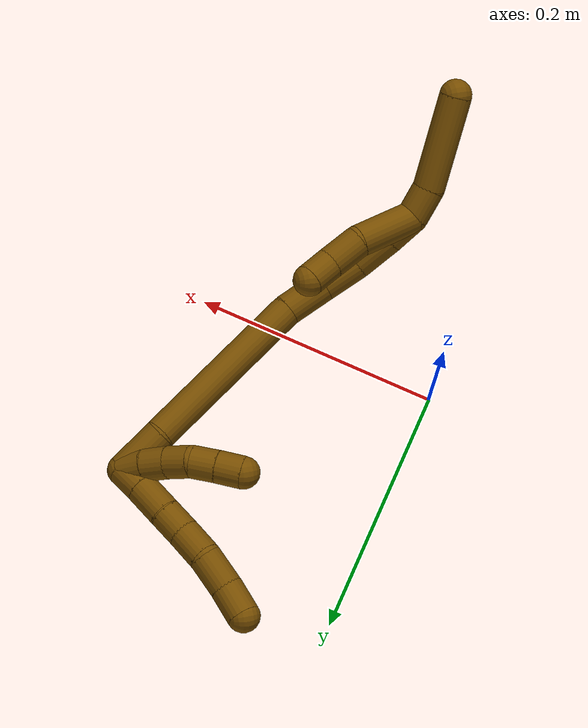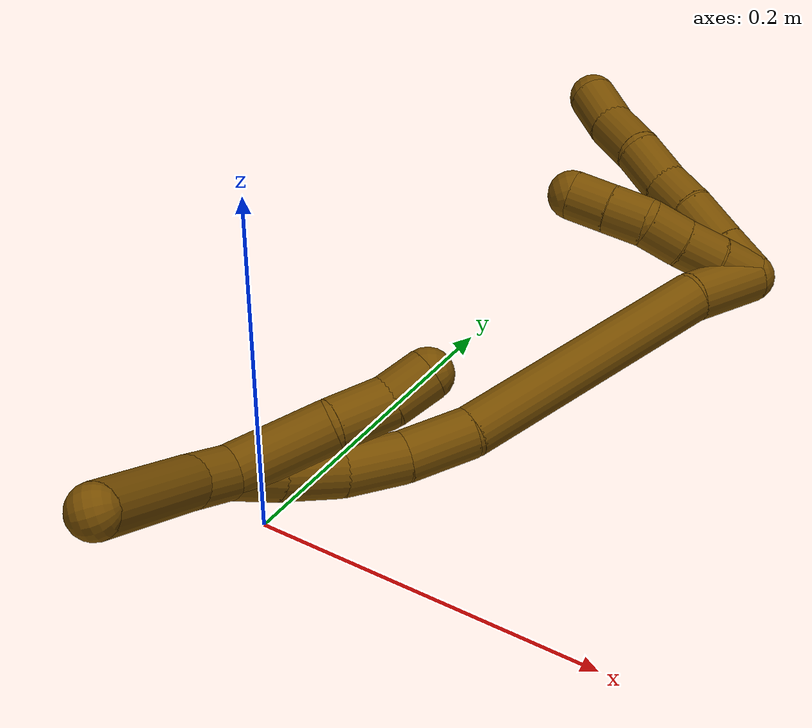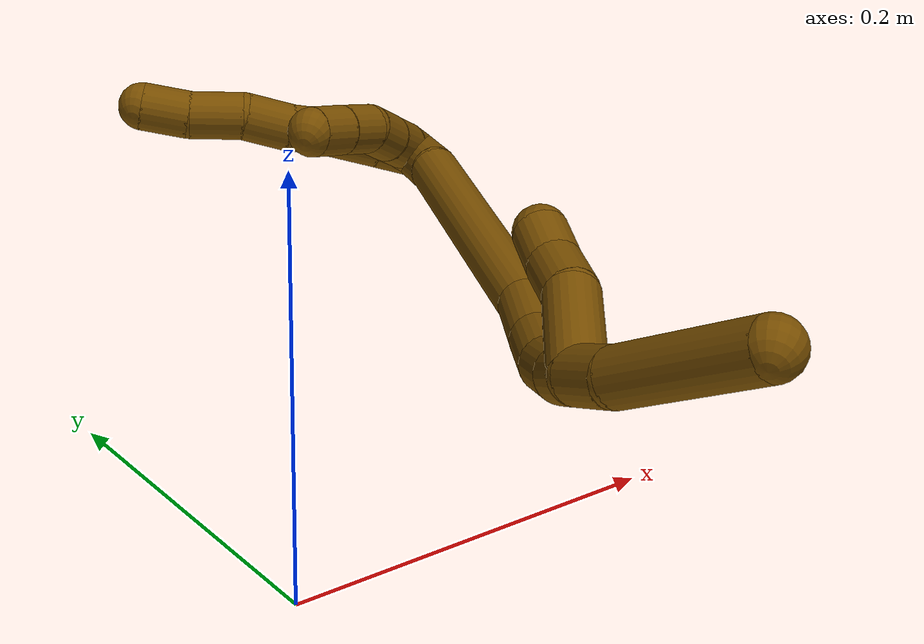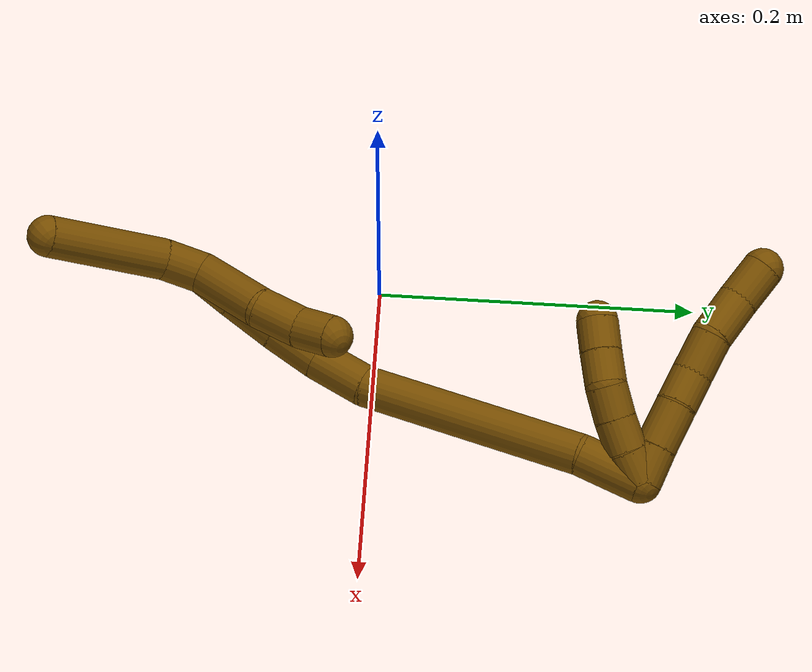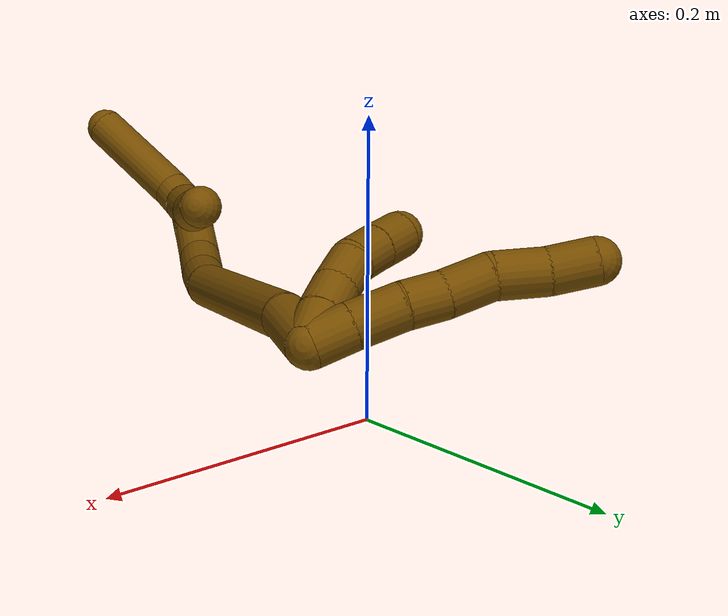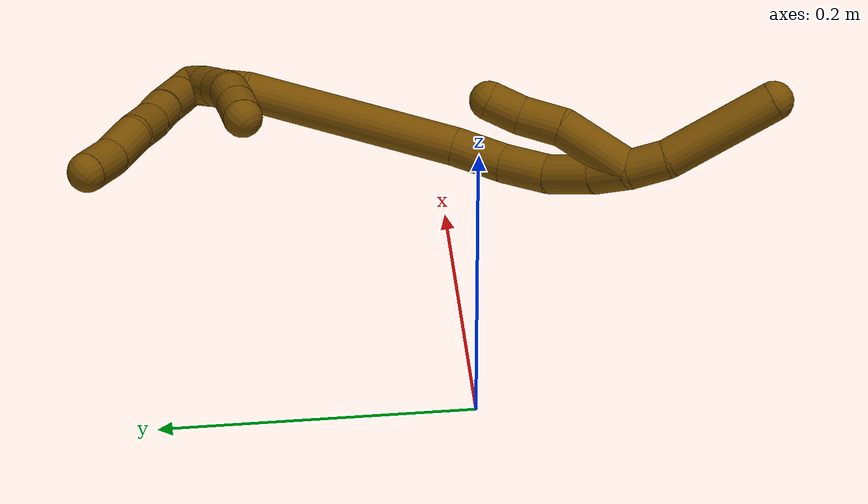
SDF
<sdf version="1.7">
 <world name="default">
  <model name="12">
   <static>0</static>
   <link name="12">
    <collision name="collision-cylinder-e_1_2_8">
     <pose>-0.003692 0.009567 -0.004253 -1.98916 -0.339032 0.515124</pose>
     <geometry><cylinder><radius>0.0125</radius><length>0.022203</length></cylinder></geometry>
     <surface>
      <friction><ode><mu>1.16</mu><mu2>1.16</mu2><slip1>0</slip1><slip2>0</slip2></ode></friction>
      <contact><ode><kp>1e+06</kp><kd>1</kd><max_vel>0</max_vel><min_depth>0.001</min_depth></ode></contact>
     </surface>
    </collision>
    <visual name="visual-cylinder-e_1_2_8">
     <pose>-0.003692 0.009567 -0.004253 -1.98916 -0.339032 0.515124</pose>
     <geometry><cylinder><radius>0.0125</radius><length>0.022203</length></cylinder></geometry>
     <material><ambient>0.466667 0.301961 0 1</ambient></material>
    </visual>
    <collision name="collision-cylinder-e_2_8_9">
     <pose>-0.01154 0.031416 -0.013517 -1.95813 -0.303595 0.447608</pose>
     <geometry><cylinder><radius>0.0125</radius><length>0.027801</length></cylinder></geometry>
     <surface>
      <friction><ode><mu>1.16</mu><mu2>1.16</mu2><slip1>0</slip1><slip2>0</slip2></ode></friction>
      <contact><ode><kp>1e+06</kp><kd>1</kd><max_vel>0</max_vel><min_depth>0.001</min_depth></ode></contact>
     </surface>
    </collision>
    <visual name="visual-cylinder-e_2_8_9">
     <pose>-0.01154 0.031416 -0.013517 -1.95813 -0.303595 0.447608</pose>
     <geometry><cylinder><radius>0.0125</radius><length>0.027801</length></cylinder></geometry>
     <material><ambient>0.466667 0.301961 0 1</ambient></material>
    </visual>
    <collision name="collision-cylinder-e_3_9_10">
     <pose>-0.017805 0.05315 -0.022935 -2.00712 -0.19955 0.311723</pose>
     <geometry><cylinder><radius>0.0125</radius><length>0.021282</length></cylinder></geometry>
     <surface>
      <friction><ode><mu>1.16</mu><mu2>1.16</mu2><slip1>0</slip1><slip2>0</slip2></ode></friction>
      <contact><ode><kp>1e+06</kp><kd>1</kd><max_vel>0</max_vel><min_depth>0.001</min_depth></ode></contact>
     </surface>
    </collision>
    <visual name="visual-cylinder-e_3_9_10">
     <pose>-0.017805 0.05315 -0.022935 -2.00712 -0.19955 0.311723</pose>
     <geometry><cylinder><radius>0.0125</radius><length>0.021282</length></cylinder></geometry>
     <material><ambient>0.466667 0.301961 0 1</ambient></material>
    </visual>
    <collision name="collision-cylinder-e_4_10_11">
     <pose>-0.023733 0.073937 -0.031697 -1.93759 -0.304765 0.439803</pose>
     <geometry><cylinder><radius>0.0125</radius><length>0.025456</length></cylinder></geometry>
     <surface>
      <friction><ode><mu>1.16</mu><mu2>1.16</mu2><slip1>0</slip1><slip2>0</slip2></ode></friction>
      <contact><ode><kp>1e+06</kp><kd>1</kd><max_vel>0</max_vel><min_depth>0.001</min_depth></ode></contact>
     </surface>
    </collision>
    <visual name="visual-cylinder-e_4_10_11">
     <pose>-0.023733 0.073937 -0.031697 -1.93759 -0.304765 0.439803</pose>
     <geometry><cylinder><radius>0.0125</radius><length>0.025456</length></cylinder></geometry>
     <material><ambient>0.466667 0.301961 0 1</ambient></material>
    </visual>
    <collision name="collision-cylinder-e_5_11_12">
     <pose>-0.027835 0.098464 -0.040981 -1.92837 -0.020047 0.02889</pose>
     <geometry><cylinder><radius>0.0125</radius><length>0.028175</length></cylinder></geometry>
     <surface>
      <friction><ode><mu>1.16</mu><mu2>1.16</mu2><slip1>0</slip1><slip2>0</slip2></ode></friction>
      <contact><ode><kp>1e+06</kp><kd>1</kd><max_vel>0</max_vel><min_depth>0.001</min_depth></ode></contact>
     </surface>
    </collision>
    <visual name="visual-cylinder-e_5_11_12">
     <pose>-0.027835 0.098464 -0.040981 -1.92837 -0.020047 0.02889</pose>
     <geometry><cylinder><radius>0.0125</radius><length>0.028175</length></cylinder></geometry>
     <material><ambient>0.466667 0.301961 0 1</ambient></material>
    </visual>
    <collision name="collision-cylinder-e_6_12_6">
     <pose>-0.029869 0.123711 -0.048903 -1.81418 -0.140146 0.179015</pose>
     <geometry><cylinder><radius>0.0125</radius><length>0.025083</length></cylinder></geometry>
     <surface>
      <friction><ode><mu>1.16</mu><mu2>1.16</mu2><slip1>0</slip1><slip2>0</slip2></ode></friction>
      <contact><ode><kp>1e+06</kp><kd>1</kd><max_vel>0</max_vel><min_depth>0.001</min_depth></ode></contact>
     </surface>
    </collision>
    <visual name="visual-cylinder-e_6_12_6">
     <pose>-0.029869 0.123711 -0.048903 -1.81418 -0.140146 0.179015</pose>
     <geometry><cylinder><radius>0.0125</radius><length>0.025083</length></cylinder></geometry>
     <material><ambient>0.466667 0.301961 0 1</ambient></material>
    </visual>
    <collision name="collision-cylinder-e_1_2_13">
     <pose>-0.007157 0.001786 -0.006752 -2.88302 -0.797608 2.54305</pose>
     <geometry><cylinder><radius>0.0125</radius><length>0.02</length></cylinder></geometry>
     <surface>
      <friction><ode><mu>1.16</mu><mu2>1.16</mu2><slip1>0</slip1><slip2>0</slip2></ode></friction>
      <contact><ode><kp>1e+06</kp><kd>1</kd><max_vel>0</max_vel><min_depth>0.001</min_depth></ode></contact>
     </surface>
    </collision>
    <visual name="visual-cylinder-e_1_2_13">
     <pose>-0.007157 0.001786 -0.006752 -2.88302 -0.797608 2.54305</pose>
     <geometry><cylinder><radius>0.0125</radius><length>0.02</length></cylinder></geometry>
     <material><ambient>0.466667 0.301961 0 1</ambient></material>
    </visual>
    <collision name="collision-cylinder-e_2_13_14">
     <pose>-0.020941 0.006154 -0.020533 -2.78947 -0.724491 2.26379</pose>
     <geometry><cylinder><radius>0.0125</radius><length>0.02</length></cylinder></geometry>
     <surface>
      <friction><ode><mu>1.16</mu><mu2>1.16</mu2><slip1>0</slip1><slip2>0</slip2></ode></friction>
      <contact><ode><kp>1e+06</kp><kd>1</kd><max_vel>0</max_vel><min_depth>0.001</min_depth></ode></contact>
     </surface>
    </collision>
    <visual name="visual-cylinder-e_2_13_14">
     <pose>-0.020941 0.006154 -0.020533 -2.78947 -0.724491 2.26379</pose>
     <geometry><cylinder><radius>0.0125</radius><length>0.02</length></cylinder></geometry>
     <material><ambient>0.466667 0.301961 0 1</ambient></material>
    </visual>
    <collision name="collision-cylinder-e_3_14_15">
     <pose>-0.034221 0.012051 -0.034253 -2.68166 -0.727769 2.03925</pose>
     <geometry><cylinder><radius>0.0125</radius><length>0.02</length></cylinder></geometry>
     <surface>
      <friction><ode><mu>1.16</mu><mu2>1.16</mu2><slip1>0</slip1><slip2>0</slip2></ode></friction>
      <contact><ode><kp>1e+06</kp><kd>1</kd><max_vel>0</max_vel><min_depth>0.001</min_depth></ode></contact>
     </surface>
    </collision>
    <visual name="visual-cylinder-e_3_14_15">
     <pose>-0.034221 0.012051 -0.034253 -2.68166 -0.727769 2.03925</pose>
     <geometry><cylinder><radius>0.0125</radius><length>0.02</length></cylinder></geometry>
     <material><ambient>0.466667 0.301961 0 1</ambient></material>
    </visual>
    <collision name="collision-cylinder-e_4_15_16">
     <pose>-0.044653 0.020131 -0.048881 -2.60098 -0.387694 1.23279</pose>
     <geometry><cylinder><radius>0.0125</radius><length>0.02</length></cylinder></geometry>
     <surface>
      <friction><ode><mu>1.16</mu><mu2>1.16</mu2><slip1>0</slip1><slip2>0</slip2></ode></friction>
      <contact><ode><kp>1e+06</kp><kd>1</kd><max_vel>0</max_vel><min_depth>0.001</min_depth></ode></contact>
     </surface>
    </collision>
    <visual name="visual-cylinder-e_4_15_16">
     <pose>-0.044653 0.020131 -0.048881 -2.60098 -0.387694 1.23279</pose>
     <geometry><cylinder><radius>0.0125</radius><length>0.02</length></cylinder></geometry>
     <material><ambient>0.466667 0.301961 0 1</ambient></material>
    </visual>
    <collision name="collision-cylinder-e_5_16_5">
     <pose>-0.051938 0.029928 -0.064717 -2.57424 -0.358015 1.11094</pose>
     <geometry><cylinder><radius>0.0125</radius><length>0.02</length></cylinder></geometry>
     <surface>
      <friction><ode><mu>1.16</mu><mu2>1.16</mu2><slip1>0</slip1><slip2>0</slip2></ode></friction>
      <contact><ode><kp>1e+06</kp><kd>1</kd><max_vel>0</max_vel><min_depth>0.001</min_depth></ode></contact>
     </surface>
    </collision>
    <visual name="visual-cylinder-e_5_16_5">
     <pose>-0.051938 0.029928 -0.064717 -2.57424 -0.358015 1.11094</pose>
     <geometry><cylinder><radius>0.0125</radius><length>0.02</length></cylinder></geometry>
     <material><ambient>0.466667 0.301961 0 1</ambient></material>
    </visual>
    <collision name="collision-cylinder-e_1_2_17">
     <pose>-0.007819 -0.009195 -0.015162 2.59643 -0.415301 -1.29172</pose>
     <geometry><cylinder><radius>0.0125</radius><length>0.038759</length></cylinder></geometry>
     <surface>
      <friction><ode><mu>1.16</mu><mu2>1.16</mu2><slip1>0</slip1><slip2>0</slip2></ode></friction>
      <contact><ode><kp>1e+06</kp><kd>1</kd><max_vel>0</max_vel><min_depth>0.001</min_depth></ode></contact>
     </surface>
    </collision>
    <visual name="visual-cylinder-e_1_2_17">
     <pose>-0.007819 -0.009195 -0.015162 2.59643 -0.415301 -1.29172</pose>
     <geometry><cylinder><radius>0.0125</radius><length>0.038759</length></cylinder></geometry>
     <material><ambient>0.466667 0.301961 0 1</ambient></material>
    </visual>
    <collision name="collision-cylinder-e_2_17_18">
     <pose>-0.029231 -0.055006 -0.08772 2.57374 -0.197069 -0.653258</pose>
     <geometry><cylinder><radius>0.0125</radius><length>0.138851</length></cylinder></geometry>
     <surface>
      <friction><ode><mu>1.16</mu><mu2>1.16</mu2><slip1>0</slip1><slip2>0</slip2></ode></friction>
      <contact><ode><kp>1e+06</kp><kd>1</kd><max_vel>0</max_vel><min_depth>0.001</min_depth></ode></contact>
     </surface>
    </collision>
    <visual name="visual-cylinder-e_2_17_18">
     <pose>-0.029231 -0.055006 -0.08772 2.57374 -0.197069 -0.653258</pose>
     <geometry><cylinder><radius>0.0125</radius><length>0.138851</length></cylinder></geometry>
     <material><ambient>0.466667 0.301961 0 1</ambient></material>
    </visual>
    <collision name="collision-cylinder-e_3_18_19">
     <pose>-0.047365 -0.097736 -0.160559 2.7646 -0.26689 -1.22644</pose>
     <geometry><cylinder><radius>0.0125</radius><length>0.034438</length></cylinder></geometry>
     <surface>
      <friction><ode><mu>1.16</mu><mu2>1.16</mu2><slip1>0</slip1><slip2>0</slip2></ode></friction>
      <contact><ode><kp>1e+06</kp><kd>1</kd><max_vel>0</max_vel><min_depth>0.001</min_depth></ode></contact>
     </surface>
    </collision>
    <visual name="visual-cylinder-e_3_18_19">
     <pose>-0.047365 -0.097736 -0.160559 2.7646 -0.26689 -1.22644</pose>
     <geometry><cylinder><radius>0.0125</radius><length>0.034438</length></cylinder></geometry>
     <material><ambient>0.466667 0.301961 0 1</ambient></material>
    </visual>
    <collision name="collision-cylinder-e_4_19_20">
     <pose>-0.058201 -0.108648 -0.189678 2.80419 -0.409712 -1.76827</pose>
     <geometry><cylinder><radius>0.0125</radius><length>0.031601</length></cylinder></geometry>
     <surface>
      <friction><ode><mu>1.16</mu><mu2>1.16</mu2><slip1>0</slip1><slip2>0</slip2></ode></friction>
      <contact><ode><kp>1e+06</kp><kd>1</kd><max_vel>0</max_vel><min_depth>0.001</min_depth></ode></contact>
     </surface>
    </collision>
    <visual name="visual-cylinder-e_4_19_20">
     <pose>-0.058201 -0.108648 -0.189678 2.80419 -0.409712 -1.76827</pose>
     <geometry><cylinder><radius>0.0125</radius><length>0.031601</length></cylinder></geometry>
     <material><ambient>0.466667 0.301961 0 1</ambient></material>
    </visual>
    <collision name="collision-cylinder-e_5_20_21">
     <pose>-0.074079 -0.118303 -0.215299 2.75542 -0.639149 -2.07425</pose>
     <geometry><cylinder><radius>0.0125</radius><length>0.032134</length></cylinder></geometry>
     <surface>
      <friction><ode><mu>1.16</mu><mu2>1.16</mu2><slip1>0</slip1><slip2>0</slip2></ode></friction>
      <contact><ode><kp>1e+06</kp><kd>1</kd><max_vel>0</max_vel><min_depth>0.001</min_depth></ode></contact>
     </surface>
    </collision>
    <visual name="visual-cylinder-e_5_20_21">
     <pose>-0.074079 -0.118303 -0.215299 2.75542 -0.639149 -2.07425</pose>
     <geometry><cylinder><radius>0.0125</radius><length>0.032134</length></cylinder></geometry>
     <material><ambient>0.466667 0.301961 0 1</ambient></material>
    </visual>
    <collision name="collision-cylinder-e_6_21_1">
     <pose>-0.092071 -0.126727 -0.235195 2.71983 -0.767527 -2.16664</pose>
     <geometry><cylinder><radius>0.0125</radius><length>0.024218</length></cylinder></geometry>
     <surface>
      <friction><ode><mu>1.16</mu><mu2>1.16</mu2><slip1>0</slip1><slip2>0</slip2></ode></friction>
      <contact><ode><kp>1e+06</kp><kd>1</kd><max_vel>0</max_vel><min_depth>0.001</min_depth></ode></contact>
     </surface>
    </collision>
    <visual name="visual-cylinder-e_6_21_1">
     <pose>-0.092071 -0.126727 -0.235195 2.71983 -0.767527 -2.16664</pose>
     <geometry><cylinder><radius>0.0125</radius><length>0.024218</length></cylinder></geometry>
     <material><ambient>0.466667 0.301961 0 1</ambient></material>
    </visual>
    <collision name="collision-cylinder-e_1_1_22">
     <pose>-0.108395 -0.137828 -0.249638 2.28203 -0.672257 -1.30261</pose>
     <geometry><cylinder><radius>0.0125</radius><length>0.025422</length></cylinder></geometry>
     <surface>
      <friction><ode><mu>1.16</mu><mu2>1.16</mu2><slip1>0</slip1><slip2>0</slip2></ode></friction>
      <contact><ode><kp>1e+06</kp><kd>1</kd><max_vel>0</max_vel><min_depth>0.001</min_depth></ode></contact>
     </surface>
    </collision>
    <visual name="visual-cylinder-e_1_1_22">
     <pose>-0.108395 -0.137828 -0.249638 2.28203 -0.672257 -1.30261</pose>
     <geometry><cylinder><radius>0.0125</radius><length>0.025422</length></cylinder></geometry>
     <material><ambient>0.466667 0.301961 0 1</ambient></material>
    </visual>
    <collision name="collision-cylinder-e_2_22_4">
     <pose>-0.141367 -0.170959 -0.266496 1.9556 -0.73683 -1.04042</pose>
     <geometry><cylinder><radius>0.0125</radius><length>0.074578</length></cylinder></geometry>
     <surface>
      <friction><ode><mu>1.16</mu><mu2>1.16</mu2><slip1>0</slip1><slip2>0</slip2></ode></friction>
      <contact><ode><kp>1e+06</kp><kd>1</kd><max_vel>0</max_vel><min_depth>0.001</min_depth></ode></contact>
     </surface>
    </collision>
    <visual name="visual-cylinder-e_2_22_4">
     <pose>-0.141367 -0.170959 -0.266496 1.9556 -0.73683 -1.04042</pose>
     <geometry><cylinder><radius>0.0125</radius><length>0.074578</length></cylinder></geometry>
     <material><ambient>0.466667 0.301961 0 1</ambient></material>
    </visual>
    <collision name="collision-cylinder-e_1_1_23">
     <pose>-0.09926 -0.123998 -0.219289 -0.258045 0.049344 -0.006403</pose>
     <geometry><cylinder><radius>0.0125</radius><length>0.049407</length></cylinder></geometry>
     <surface>
      <friction><ode><mu>1.16</mu><mu2>1.16</mu2><slip1>0</slip1><slip2>0</slip2></ode></friction>
      <contact><ode><kp>1e+06</kp><kd>1</kd><max_vel>0</max_vel><min_depth>0.001</min_depth></ode></contact>
     </surface>
    </collision>
    <visual name="visual-cylinder-e_1_1_23">
     <pose>-0.09926 -0.123998 -0.219289 -0.258045 0.049344 -0.006403</pose>
     <geometry><cylinder><radius>0.0125</radius><length>0.049407</length></cylinder></geometry>
     <material><ambient>0.466667 0.301961 0 1</ambient></material>
    </visual>
    <collision name="collision-cylinder-e_2_23_24">
     <pose>-0.094266 -0.111809 -0.183122 -0.446419 0.2699 -0.06162</pose>
     <geometry><cylinder><radius>0.0125</radius><length>0.028323</length></cylinder></geometry>
     <surface>
      <friction><ode><mu>1.16</mu><mu2>1.16</mu2><slip1>0</slip1><slip2>0</slip2></ode></friction>
      <contact><ode><kp>1e+06</kp><kd>1</kd><max_vel>0</max_vel><min_depth>0.001</min_depth></ode></contact>
     </surface>
    </collision>
    <visual name="visual-cylinder-e_2_23_24">
     <pose>-0.094266 -0.111809 -0.183122 -0.446419 0.2699 -0.06162</pose>
     <geometry><cylinder><radius>0.0125</radius><length>0.028323</length></cylinder></geometry>
     <material><ambient>0.466667 0.301961 0 1</ambient></material>
    </visual>
    <collision name="collision-cylinder-e_3_24_3">
     <pose>-0.090202 -0.100572 -0.161046 -0.500797 0.025881 -0.00662</pose>
     <geometry><cylinder><radius>0.0125</radius><length>0.02227</length></cylinder></geometry>
     <surface>
      <friction><ode><mu>1.16</mu><mu2>1.16</mu2><slip1>0</slip1><slip2>0</slip2></ode></friction>
      <contact><ode><kp>1e+06</kp><kd>1</kd><max_vel>0</max_vel><min_depth>0.001</min_depth></ode></contact>
     </surface>
    </collision>
    <visual name="visual-cylinder-e_3_24_3">
     <pose>-0.090202 -0.100572 -0.161046 -0.500797 0.025881 -0.00662</pose>
     <geometry><cylinder><radius>0.0125</radius><length>0.02227</length></cylinder></geometry>
     <material><ambient>0.466667 0.301961 0 1</ambient></material>
    </visual>
    <collision name="collision-sphere-3">
     <pose>-0.089914 -0.095227 -0.151282 0 -0 0</pose>
     <geometry><sphere><radius>0.0125</radius></sphere></geometry>
     <surface>
      <friction><ode><mu>1.16</mu><mu2>1.16</mu2><slip1>0</slip1><slip2>0</slip2></ode></friction>
      <contact><ode><kp>1e+06</kp><kd>1</kd><max_vel>0</max_vel><min_depth>0.001</min_depth></ode></contact>
     </surface>
    </collision>
    <visual name="visual-sphere-3">
     <pose>-0.089914 -0.095227 -0.151282 0 -0 0</pose>
     <geometry><sphere><radius>0.0125</radius></sphere></geometry>
     <material><ambient>0.466667 0.301961 0 1</ambient></material>
    </visual>
    <collision name="collision-sphere-24">
     <pose>-0.09049 -0.105916 -0.17081 0 -0 0</pose>
     <geometry><sphere><radius>0.0125</radius></sphere></geometry>
     <surface>
      <friction><ode><mu>1.16</mu><mu2>1.16</mu2><slip1>0</slip1><slip2>0</slip2></ode></friction>
      <contact><ode><kp>1e+06</kp><kd>1</kd><max_vel>0</max_vel><min_depth>0.001</min_depth></ode></contact>
     </surface>
    </collision>
    <visual name="visual-sphere-24">
     <pose>-0.09049 -0.105916 -0.17081 0 -0 0</pose>
     <geometry><sphere><radius>0.0125</radius></sphere></geometry>
     <material><ambient>0.466667 0.301961 0 1</ambient></material>
    </visual>
    <collision name="collision-sphere-23">
     <pose>-0.098042 -0.117701 -0.195433 0 -0 0</pose>
     <geometry><sphere><radius>0.0125</radius></sphere></geometry>
     <surface>
      <friction><ode><mu>1.16</mu><mu2>1.16</mu2><slip1>0</slip1><slip2>0</slip2></ode></friction>
      <contact><ode><kp>1e+06</kp><kd>1</kd><max_vel>0</max_vel><min_depth>0.001</min_depth></ode></contact>
     </surface>
    </collision>
    <visual name="visual-sphere-23">
     <pose>-0.098042 -0.117701 -0.195433 0 -0 0</pose>
     <geometry><sphere><radius>0.0125</radius></sphere></geometry>
     <material><ambient>0.466667 0.301961 0 1</ambient></material>
    </visual>
    <collision name="collision-sphere-4">
     <pose>-0.166423 -0.196556 -0.276863 0 -0 0</pose>
     <geometry><sphere><radius>0.0125</radius></sphere></geometry>
     <surface>
      <friction><ode><mu>1.16</mu><mu2>1.16</mu2><slip1>0</slip1><slip2>0</slip2></ode></friction>
      <contact><ode><kp>1e+06</kp><kd>1</kd><max_vel>0</max_vel><min_depth>0.001</min_depth></ode></contact>
     </surface>
    </collision>
    <visual name="visual-sphere-4">
     <pose>-0.166423 -0.196556 -0.276863 0 -0 0</pose>
     <geometry><sphere><radius>0.0125</radius></sphere></geometry>
     <material><ambient>0.466667 0.301961 0 1</ambient></material>
    </visual>
    <collision name="collision-sphere-22">
     <pose>-0.11631 -0.145363 -0.25613 0 -0 0</pose>
     <geometry><sphere><radius>0.0125</radius></sphere></geometry>
     <surface>
      <friction><ode><mu>1.16</mu><mu2>1.16</mu2><slip1>0</slip1><slip2>0</slip2></ode></friction>
      <contact><ode><kp>1e+06</kp><kd>1</kd><max_vel>0</max_vel><min_depth>0.001</min_depth></ode></contact>
     </surface>
    </collision>
    <visual name="visual-sphere-22">
     <pose>-0.11631 -0.145363 -0.25613 0 -0 0</pose>
     <geometry><sphere><radius>0.0125</radius></sphere></geometry>
     <material><ambient>0.466667 0.301961 0 1</ambient></material>
    </visual>
    <collision name="collision-sphere-1">
     <pose>-0.100479 -0.130294 -0.243146 0 -0 0</pose>
     <geometry><sphere><radius>0.0125</radius></sphere></geometry>
     <surface>
      <friction><ode><mu>1.16</mu><mu2>1.16</mu2><slip1>0</slip1><slip2>0</slip2></ode></friction>
      <contact><ode><kp>1e+06</kp><kd>1</kd><max_vel>0</max_vel><min_depth>0.001</min_depth></ode></contact>
     </surface>
    </collision>
    <visual name="visual-sphere-1">
     <pose>-0.100479 -0.130294 -0.243146 0 -0 0</pose>
     <geometry><sphere><radius>0.0125</radius></sphere></geometry>
     <material><ambient>0.466667 0.301961 0 1</ambient></material>
    </visual>
    <collision name="collision-sphere-21">
     <pose>-0.083663 -0.12316 -0.227245 0 -0 0</pose>
     <geometry><sphere><radius>0.0125</radius></sphere></geometry>
     <surface>
      <friction><ode><mu>1.16</mu><mu2>1.16</mu2><slip1>0</slip1><slip2>0</slip2></ode></friction>
      <contact><ode><kp>1e+06</kp><kd>1</kd><max_vel>0</max_vel><min_depth>0.001</min_depth></ode></contact>
     </surface>
    </collision>
    <visual name="visual-sphere-21">
     <pose>-0.083663 -0.12316 -0.227245 0 -0 0</pose>
     <geometry><sphere><radius>0.0125</radius></sphere></geometry>
     <material><ambient>0.466667 0.301961 0 1</ambient></material>
    </visual>
    <collision name="collision-sphere-12">
     <pose>-0.028117 0.111658 -0.045911 0 -0 0</pose>
     <geometry><sphere><radius>0.0125</radius></sphere></geometry>
     <surface>
      <friction><ode><mu>1.16</mu><mu2>1.16</mu2><slip1>0</slip1><slip2>0</slip2></ode></friction>
      <contact><ode><kp>1e+06</kp><kd>1</kd><max_vel>0</max_vel><min_depth>0.001</min_depth></ode></contact>
     </surface>
    </collision>
    <visual name="visual-sphere-12">
     <pose>-0.028117 0.111658 -0.045911 0 -0 0</pose>
     <geometry><sphere><radius>0.0125</radius></sphere></geometry>
     <material><ambient>0.466667 0.301961 0 1</ambient></material>
    </visual>
    <collision name="collision-sphere-11">
     <pose>-0.027553 0.085271 -0.036052 0 -0 0</pose>
     <geometry><sphere><radius>0.0125</radius></sphere></geometry>
     <surface>
      <friction><ode><mu>1.16</mu><mu2>1.16</mu2><slip1>0</slip1><slip2>0</slip2></ode></friction>
      <contact><ode><kp>1e+06</kp><kd>1</kd><max_vel>0</max_vel><min_depth>0.001</min_depth></ode></contact>
     </surface>
    </collision>
    <visual name="visual-sphere-11">
     <pose>-0.027553 0.085271 -0.036052 0 -0 0</pose>
     <geometry><sphere><radius>0.0125</radius></sphere></geometry>
     <material><ambient>0.466667 0.301961 0 1</ambient></material>
    </visual>
    <collision name="collision-sphere-10">
     <pose>-0.019914 0.062603 -0.027343 0 -0 0</pose>
     <geometry><sphere><radius>0.0125</radius></sphere></geometry>
     <surface>
      <friction><ode><mu>1.16</mu><mu2>1.16</mu2><slip1>0</slip1><slip2>0</slip2></ode></friction>
      <contact><ode><kp>1e+06</kp><kd>1</kd><max_vel>0</max_vel><min_depth>0.001</min_depth></ode></contact>
     </surface>
    </collision>
    <visual name="visual-sphere-10">
     <pose>-0.019914 0.062603 -0.027343 0 -0 0</pose>
     <geometry><sphere><radius>0.0125</radius></sphere></geometry>
     <material><ambient>0.466667 0.301961 0 1</ambient></material>
    </visual>
    <collision name="collision-sphere-9">
     <pose>-0.015695 0.043698 -0.018528 0 -0 0</pose>
     <geometry><sphere><radius>0.0125</radius></sphere></geometry>
     <surface>
      <friction><ode><mu>1.16</mu><mu2>1.16</mu2><slip1>0</slip1><slip2>0</slip2></ode></friction>
      <contact><ode><kp>1e+06</kp><kd>1</kd><max_vel>0</max_vel><min_depth>0.001</min_depth></ode></contact>
     </surface>
    </collision>
    <visual name="visual-sphere-9">
     <pose>-0.015695 0.043698 -0.018528 0 -0 0</pose>
     <geometry><sphere><radius>0.0125</radius></sphere></geometry>
     <material><ambient>0.466667 0.301961 0 1</ambient></material>
    </visual>
    <collision name="collision-sphere-2">
     <geometry><sphere><radius>0.0125</radius></sphere></geometry>
     <surface>
      <friction><ode><mu>1.16</mu><mu2>1.16</mu2><slip1>0</slip1><slip2>0</slip2></ode></friction>
      <contact><ode><kp>1e+06</kp><kd>1</kd><max_vel>0</max_vel><min_depth>0.001</min_depth></ode></contact>
     </surface>
    </collision>
    <visual name="visual-sphere-2">
     <geometry><sphere><radius>0.0125</radius></sphere></geometry>
     <material><ambient>0.466667 0.301961 0 1</ambient></material>
    </visual>
    <collision name="collision-sphere-19">
     <pose>-0.051906 -0.10385 -0.176002 0 -0 0</pose>
     <geometry><sphere><radius>0.0125</radius></sphere></geometry>
     <surface>
      <friction><ode><mu>1.16</mu><mu2>1.16</mu2><slip1>0</slip1><slip2>0</slip2></ode></friction>
      <contact><ode><kp>1e+06</kp><kd>1</kd><max_vel>0</max_vel><min_depth>0.001</min_depth></ode></contact>
     </surface>
    </collision>
    <visual name="visual-sphere-19">
     <pose>-0.051906 -0.10385 -0.176002 0 -0 0</pose>
     <geometry><sphere><radius>0.0125</radius></sphere></geometry>
     <material><ambient>0.466667 0.301961 0 1</ambient></material>
    </visual>
    <collision name="collision-sphere-8">
     <pose>-0.007384 0.019133 -0.008507 0 -0 0</pose>
     <geometry><sphere><radius>0.0125</radius></sphere></geometry>
     <surface>
      <friction><ode><mu>1.16</mu><mu2>1.16</mu2><slip1>0</slip1><slip2>0</slip2></ode></friction>
      <contact><ode><kp>1e+06</kp><kd>1</kd><max_vel>0</max_vel><min_depth>0.001</min_depth></ode></contact>
     </surface>
    </collision>
    <visual name="visual-sphere-8">
     <pose>-0.007384 0.019133 -0.008507 0 -0 0</pose>
     <geometry><sphere><radius>0.0125</radius></sphere></geometry>
     <material><ambient>0.466667 0.301961 0 1</ambient></material>
    </visual>
    <collision name="collision-sphere-6">
     <pose>-0.031621 0.135763 -0.051896 0 -0 0</pose>
     <geometry><sphere><radius>0.0125</radius></sphere></geometry>
     <surface>
      <friction><ode><mu>1.16</mu><mu2>1.16</mu2><slip1>0</slip1><slip2>0</slip2></ode></friction>
      <contact><ode><kp>1e+06</kp><kd>1</kd><max_vel>0</max_vel><min_depth>0.001</min_depth></ode></contact>
     </surface>
    </collision>
    <visual name="visual-sphere-6">
     <pose>-0.031621 0.135763 -0.051896 0 -0 0</pose>
     <geometry><sphere><radius>0.0125</radius></sphere></geometry>
     <material><ambient>0.466667 0.301961 0 1</ambient></material>
    </visual>
    <collision name="collision-sphere-13">
     <pose>-0.014314 0.003572 -0.013504 0 -0 0</pose>
     <geometry><sphere><radius>0.0125</radius></sphere></geometry>
     <surface>
      <friction><ode><mu>1.16</mu><mu2>1.16</mu2><slip1>0</slip1><slip2>0</slip2></ode></friction>
      <contact><ode><kp>1e+06</kp><kd>1</kd><max_vel>0</max_vel><min_depth>0.001</min_depth></ode></contact>
     </surface>
    </collision>
    <visual name="visual-sphere-13">
     <pose>-0.014314 0.003572 -0.013504 0 -0 0</pose>
     <geometry><sphere><radius>0.0125</radius></sphere></geometry>
     <material><ambient>0.466667 0.301961 0 1</ambient></material>
    </visual>
    <collision name="collision-sphere-14">
     <pose>-0.027569 0.008737 -0.027562 0 -0 0</pose>
     <geometry><sphere><radius>0.0125</radius></sphere></geometry>
     <surface>
      <friction><ode><mu>1.16</mu><mu2>1.16</mu2><slip1>0</slip1><slip2>0</slip2></ode></friction>
      <contact><ode><kp>1e+06</kp><kd>1</kd><max_vel>0</max_vel><min_depth>0.001</min_depth></ode></contact>
     </surface>
    </collision>
    <visual name="visual-sphere-14">
     <pose>-0.027569 0.008737 -0.027562 0 -0 0</pose>
     <geometry><sphere><radius>0.0125</radius></sphere></geometry>
     <material><ambient>0.466667 0.301961 0 1</ambient></material>
    </visual>
    <collision name="collision-sphere-15">
     <pose>-0.040873 0.015366 -0.040943 0 -0 0</pose>
     <geometry><sphere><radius>0.0125</radius></sphere></geometry>
     <surface>
      <friction><ode><mu>1.16</mu><mu2>1.16</mu2><slip1>0</slip1><slip2>0</slip2></ode></friction>
      <contact><ode><kp>1e+06</kp><kd>1</kd><max_vel>0</max_vel><min_depth>0.001</min_depth></ode></contact>
     </surface>
    </collision>
    <visual name="visual-sphere-15">
     <pose>-0.040873 0.015366 -0.040943 0 -0 0</pose>
     <geometry><sphere><radius>0.0125</radius></sphere></geometry>
     <material><ambient>0.466667 0.301961 0 1</ambient></material>
    </visual>
    <collision name="collision-sphere-16">
     <pose>-0.048434 0.024895 -0.056818 0 -0 0</pose>
     <geometry><sphere><radius>0.0125</radius></sphere></geometry>
     <surface>
      <friction><ode><mu>1.16</mu><mu2>1.16</mu2><slip1>0</slip1><slip2>0</slip2></ode></friction>
      <contact><ode><kp>1e+06</kp><kd>1</kd><max_vel>0</max_vel><min_depth>0.001</min_depth></ode></contact>
     </surface>
    </collision>
    <visual name="visual-sphere-16">
     <pose>-0.048434 0.024895 -0.056818 0 -0 0</pose>
     <geometry><sphere><radius>0.0125</radius></sphere></geometry>
     <material><ambient>0.466667 0.301961 0 1</ambient></material>
    </visual>
    <collision name="collision-sphere-5">
     <pose>-0.055442 0.034962 -0.072616 0 -0 0</pose>
     <geometry><sphere><radius>0.0125</radius></sphere></geometry>
     <surface>
      <friction><ode><mu>1.16</mu><mu2>1.16</mu2><slip1>0</slip1><slip2>0</slip2></ode></friction>
      <contact><ode><kp>1e+06</kp><kd>1</kd><max_vel>0</max_vel><min_depth>0.001</min_depth></ode></contact>
     </surface>
    </collision>
    <visual name="visual-sphere-5">
     <pose>-0.055442 0.034962 -0.072616 0 -0 0</pose>
     <geometry><sphere><radius>0.0125</radius></sphere></geometry>
     <material><ambient>0.466667 0.301961 0 1</ambient></material>
    </visual>
    <collision name="collision-sphere-17">
     <pose>-0.015638 -0.01839 -0.030323 0 -0 0</pose>
     <geometry><sphere><radius>0.0125</radius></sphere></geometry>
     <surface>
      <friction><ode><mu>1.16</mu><mu2>1.16</mu2><slip1>0</slip1><slip2>0</slip2></ode></friction>
      <contact><ode><kp>1e+06</kp><kd>1</kd><max_vel>0</max_vel><min_depth>0.001</min_depth></ode></contact>
     </surface>
    </collision>
    <visual name="visual-sphere-17">
     <pose>-0.015638 -0.01839 -0.030323 0 -0 0</pose>
     <geometry><sphere><radius>0.0125</radius></sphere></geometry>
     <material><ambient>0.466667 0.301961 0 1</ambient></material>
    </visual>
    <collision name="collision-sphere-18">
     <pose>-0.042824 -0.091622 -0.145116 0 -0 0</pose>
     <geometry><sphere><radius>0.0125</radius></sphere></geometry>
     <surface>
      <friction><ode><mu>1.16</mu><mu2>1.16</mu2><slip1>0</slip1><slip2>0</slip2></ode></friction>
      <contact><ode><kp>1e+06</kp><kd>1</kd><max_vel>0</max_vel><min_depth>0.001</min_depth></ode></contact>
     </surface>
    </collision>
    <visual name="visual-sphere-18">
     <pose>-0.042824 -0.091622 -0.145116 0 -0 0</pose>
     <geometry><sphere><radius>0.0125</radius></sphere></geometry>
     <material><ambient>0.466667 0.301961 0 1</ambient></material>
    </visual>
    <collision name="collision-sphere-20">
     <pose>-0.064495 -0.113446 -0.203354 0 -0 0</pose>
     <geometry><sphere><radius>0.0125</radius></sphere></geometry>
     <surface>
      <friction><ode><mu>1.16</mu><mu2>1.16</mu2><slip1>0</slip1><slip2>0</slip2></ode></friction>
      <contact><ode><kp>1e+06</kp><kd>1</kd><max_vel>0</max_vel><min_depth>0.001</min_depth></ode></contact>
     </surface>
    </collision>
    <visual name="visual-sphere-20">
     <pose>-0.064495 -0.113446 -0.203354 0 -0 0</pose>
     <geometry><sphere><radius>0.0125</radius></sphere></geometry>
     <material><ambient>0.466667 0.301961 0 1</ambient></material>
    </visual>
    <inertial>
     <pose>-0.055228 -0.050764 -0.120511 0 -0 0</pose>
     <mass>0.75</mass>
     <inertia>
      <ixx>3.1e-05</ixx>
      <ixy>0</ixy>
      <ixz>0</ixz>
      <iyy>-0.000275</iyy>
      <iyz>0</iyz>
      <izz>0.000197</izz>
     </inertia>
    </inertial>
   </link>
   <pose>0.186332 0.166344 0.129133 0.417775 1.23278 1.07695</pose>
  </model>
 </world>
</sdf>
